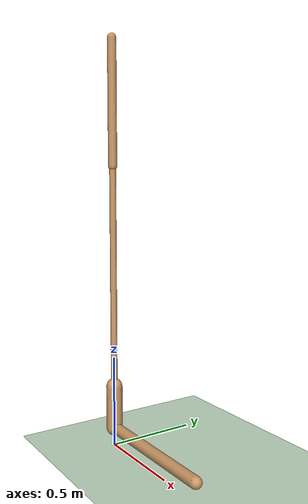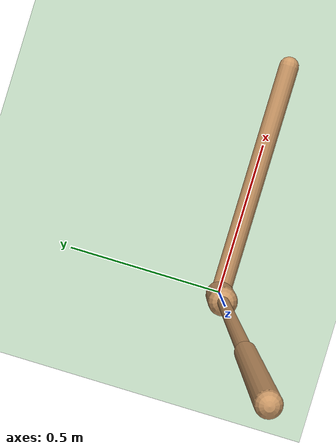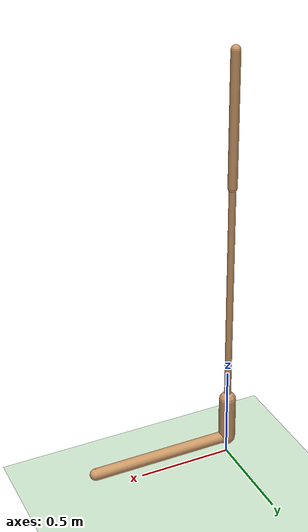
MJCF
<mujoco model="walker2d">
  <compiler angle="degree" inertiafromgeom="true" />
  <default>
    <joint armature="0.01" damping=".1" limited="true" />
    <geom conaffinity="0" condim="3" contype="1" density="1000" friction=".7 .1 .1" rgba="0.8 0.6 .4 1" />
  </default>
  <option integrator="RK4" timestep="0.002" />
  <worldbody>
    <light cutoff="100" diffuse="1 1 1" dir="-0 0 -1.3" directional="true" exponent="1" pos="0 0 1.3" specular=".1 .1 .1" />
    <geom conaffinity="1" condim="3" name="floor" pos="0 0 0" rgba="0.8 0.9 0.8 1" size="40 40 40" type="plane" material="MatPlane" />
    <body name="torso" pos="0 0 1.8887644469738007">
      <camera name="track" mode="trackcom" pos="0 -5 -1.25" xyaxes="1 0 0 0 0 1" />
      <joint armature="0" axis="1 0 0" damping="0" limited="false" name="rootx" pos="0 0 -1.25" stiffness="0" type="slide" />
      <joint armature="0" axis="0 0 1" damping="0" limited="false" name="rootz" pos="0 0 -1.25" ref="1.25" stiffness="0" type="slide" />
      <joint armature="0" axis="0 1 0" damping="0" limited="false" name="rooty" pos="0 0 0" stiffness="0" type="hinge" />
      <geom friction="0.9" name="torso_geom" size="0.02399439364671707 0.3333088457584381" type="capsule" />
      <body name="thigh" pos="0 0 -0.3333088457584381">
        <joint axis="0 -1 0" name="thigh_joint" pos="0 0 0" range="-150 0" type="hinge" />
        <site name="torso_thigh_site" pos="0 0 0" size="0.01" type="sphere" rgba="1 0 0 0.5" />
        <geom friction="0.9" pos="0 0 -0.608327329158783" name="thigh_geom" size="0.017964523285627365 0.608327329158783" type="capsule" />
        <body name="leg" pos="0 0 -1.3360551297664642">
          <joint axis="0 -1 0" name="leg_joint" pos="0 0 0.11940047144889832" range="-150 0" type="hinge" />
          <site name="thigh_leg_site" pos="0 0 0.25" size="0.01" type="sphere" rgba="1 0 0 0.5" />
          <geom friction="0.9" name="leg_geom" size="0.04491506889462471 0.11940047144889832" type="capsule" />
          <body name="foot" pos="0.7579818367958069 0 -0.21940047144889832">
            <joint axis="0 -1 0" name="foot_joint" pos="-0.7579818367958069 0 0.1" range="-45 45" type="hinge" />
            <site name="leg_foot_site" pos="-0.2 0 0.1" size="0.01" type="sphere" rgba="1 0 0 0.5" />
            <geom friction="0.9" pos="-0.37899091839790344 0 0.1" quat="0.70710678118654757 0 -0.70710678118654746 0" name="foot_geom" size="0.031497351825237274 0.37899091839790344" type="capsule" />
          </body>
        </body>
      </body>

      <body name="thigh_left" pos="0 0 -0.3333088457584381">
        <joint axis="0 -1 0" name="thigh_left_joint" pos="0 0 0" range="-150 0" type="hinge" />
        <site name="torso_thigh_left_site" pos="0 0 0" size="0.01" type="sphere" rgba="1 0 0 0.5" />
        <geom friction="0.9" name="thigh_left_geom" rgba=".7 .3 .6 1" size="0.017964523285627365 0.608327329158783" pos="0 0 -0.608327329158783" type="capsule" />
        <body name="leg_left" pos="0 0 -1.3360551297664642">
          <joint axis="0 -1 0" name="leg_left_joint" pos="0 0 0.11940047144889832" range="-150 0" type="hinge" />
          <site name="thigh_leg_left_site" pos="0 0 0.25" size="0.01" type="sphere" rgba="1 0 0 0.5" />
          <geom friction="0.9" name="leg_left_geom" rgba=".7 .3 .6 1" size="0.04491506889462471 0.11940047144889832" type="capsule" />
          <body name="foot_left" pos="0.7579818367958069 0 -0.21940047144889832">
            <joint axis="0 -1 0" name="foot_left_joint" pos="-0.7579818367958069 0 0.1" range="-45 45" type="hinge" />
            <site name="leg_foot_left_site" pos="-0.2 0 0.1" size="0.01" type="sphere" rgba="1 0 0 0.5" />
            <geom friction="1.9" name="foot_left_geom" rgba=".7 .3 .6 1" size="0.031497351825237274 0.37899091839790344" pos="-0.37899091839790344 0 0.1" type="capsule" quat="0.70710678118654757 0 -0.70710678118654746 0" />
          </body>
        </body>
      </body>
    </body>
  </worldbody>
  <actuator>

    <motor ctrllimited="true" ctrlrange="-1.0 1.0" gear="34.90166896179522" joint="thigh_joint" />
    <motor ctrllimited="true" ctrlrange="-1.0 1.0" gear="60.21853567313493" joint="leg_joint" />
    <motor ctrllimited="true" ctrlrange="-1.0 1.0" gear="104.441809023455" joint="foot_joint" />
    <motor ctrllimited="true" ctrlrange="-1.0 1.0" gear="34.90166896179522" joint="thigh_left_joint" />
    <motor ctrllimited="true" ctrlrange="-1.0 1.0" gear="60.21853567313493" joint="leg_left_joint" />
    <motor ctrllimited="true" ctrlrange="-1.0 1.0" gear="104.441809023455" joint="foot_left_joint" />

  </actuator>
    <asset>
        <texture type="skybox" builtin="gradient" rgb1=".4 .5 .6" rgb2="0 0 0" width="100" height="100" />
        <texture builtin="flat" height="1278" mark="cross" markrgb="1 1 1" name="texgeom" random="0.01" rgb1="0.8 0.6 0.4" rgb2="0.8 0.6 0.4" type="cube" width="127" />
        <texture builtin="checker" height="100" name="texplane" rgb1="0 0 0" rgb2="0.8 0.8 0.8" type="2d" width="100" />
        <material name="MatPlane" reflectance="0.5" shininess="1" specular="1" texrepeat="60 60" texture="texplane" />
        <material name="geom" texture="texgeom" texuniform="true" />
    </asset>

  <sensor>
    <force site="torso_thigh_site" name="torso_thigh_sensor" />
    <force site="thigh_leg_site" name="thigh_leg_sensor" />
    <force site="leg_foot_site" name="leg_foot_sensor" />
    <force site="torso_thigh_left_site" name="torso_thigh_left_sensor" />
    <force site="thigh_leg_left_site" name="thigh_leg_left_sensor" />
    <force site="leg_foot_left_site" name="leg_foot_left_sensor" />
  </sensor>
</mujoco>
